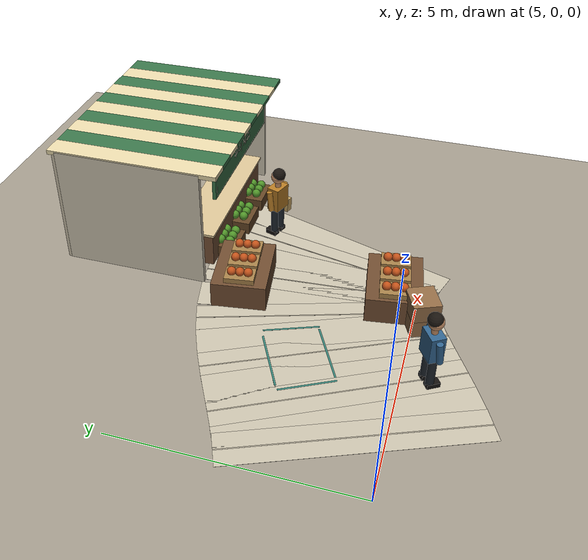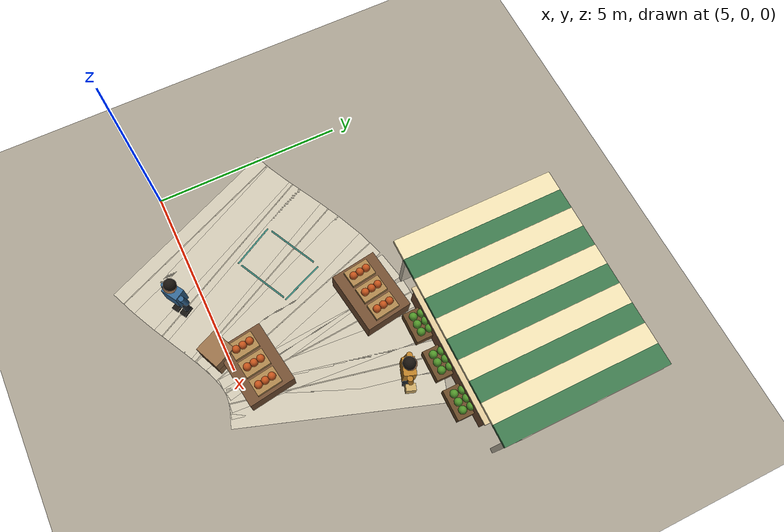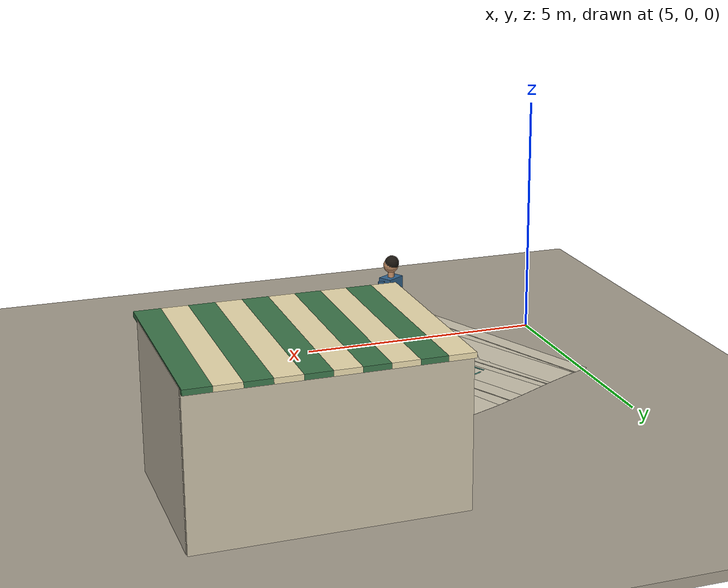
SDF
<sdf version="1.10">
 <world name="swan_market">
  <model name="ground">
   <static>true</static>
   <pose>15 0 -0.1 0 0 0</pose>
   <link name="body">
    <collision name="box_collision"><geometry><box><size>46 24 0.2</size></box></geometry></collision>
    <visual name="box_visual">
     <geometry><box><size>46 24 0.2</size></box></geometry>
     <material><ambient>0.64 0.61 0.55 1</ambient><diffuse>0.64 0.61 0.55 1</diffuse></material>
    </visual>
   </link>
  </model>
  <model name="market_paving_16">
   <static>true</static>
   <pose>6.25 0.54833 0.002 0 0 0.40225</pose>
   <link name="body">
    <visual name="box_visual">
     <geometry><box><size>0.75 5.2 0.004</size></box></geometry>
     <material><ambient>0.79 0.76 0.68 1</ambient><diffuse>0.79 0.76 0.68 1</diffuse></material>
    </visual>
   </link>
  </model>
  <model name="paving_joint_16">
   <static>true</static>
   <pose>6.25 0.54833 0.0045 0 0 0.40225</pose>
   <link name="body">
    <visual name="box_visual">
     <geometry><box><size>0.025 5.2 0.001</size></box></geometry>
     <material><ambient>0.67 0.64 0.57 1</ambient><diffuse>0.67 0.64 0.57 1</diffuse></material>
    </visual>
   </link>
  </model>
  <model name="market_paving_17">
   <static>true</static>
   <pose>6.75 0.77782 0.002 0 0 0.45458</pose>
   <link name="body">
    <visual name="box_visual">
     <geometry><box><size>0.75 5.2 0.004</size></box></geometry>
     <material><ambient>0.79 0.76 0.68 1</ambient><diffuse>0.79 0.76 0.68 1</diffuse></material>
    </visual>
   </link>
  </model>
  <model name="market_paving_18">
   <static>true</static>
   <pose>7.25 1.0326 0.002 0 0 0.48375</pose>
   <link name="body">
    <visual name="box_visual">
     <geometry><box><size>0.75 5.2 0.004</size></box></geometry>
     <material><ambient>0.79 0.76 0.68 1</ambient><diffuse>0.79 0.76 0.68 1</diffuse></material>
    </visual>
   </link>
  </model>
  <model name="paving_joint_18">
   <static>true</static>
   <pose>7.25 1.0326 0.0045 0 0 0.48375</pose>
   <link name="body">
    <visual name="box_visual">
     <geometry><box><size>0.025 5.2 0.001</size></box></geometry>
     <material><ambient>0.67 0.64 0.57 1</ambient><diffuse>0.67 0.64 0.57 1</diffuse></material>
    </visual>
   </link>
  </model>
  <model name="market_paving_19">
   <static>true</static>
   <pose>7.75 1.2978 0.002 0 0 0.48699</pose>
   <link name="body">
    <visual name="box_visual">
     <geometry><box><size>0.75 5.2 0.004</size></box></geometry>
     <material><ambient>0.79 0.76 0.68 1</ambient><diffuse>0.79 0.76 0.68 1</diffuse></material>
    </visual>
   </link>
  </model>
  <model name="market_paving_20">
   <static>true</static>
   <pose>8.25 1.5562 0.002 0 0 0.46221</pose>
   <link name="body">
    <visual name="box_visual">
     <geometry><box><size>0.75 5.2 0.004</size></box></geometry>
     <material><ambient>0.79 0.76 0.68 1</ambient><diffuse>0.79 0.76 0.68 1</diffuse></material>
    </visual>
   </link>
  </model>
  <model name="paving_joint_20">
   <static>true</static>
   <pose>8.25 1.5562 0.0045 0 0 0.46221</pose>
   <link name="body">
    <visual name="box_visual">
     <geometry><box><size>0.025 5.2 0.001</size></box></geometry>
     <material><ambient>0.67 0.64 0.57 1</ambient><diffuse>0.67 0.64 0.57 1</diffuse></material>
    </visual>
   </link>
  </model>
  <model name="market_paving_21">
   <static>true</static>
   <pose>8.75 1.7901 0.002 0 0 0.40758</pose>
   <link name="body">
    <visual name="box_visual">
     <geometry><box><size>0.75 5.2 0.004</size></box></geometry>
     <material><ambient>0.79 0.76 0.68 1</ambient><diffuse>0.79 0.76 0.68 1</diffuse></material>
    </visual>
   </link>
  </model>
  <model name="market_paving_22">
   <static>true</static>
   <pose>9.25 1.9827 0.002 0 0 0.32217</pose>
   <link name="body">
    <visual name="box_visual">
     <geometry><box><size>0.75 5.2 0.004</size></box></geometry>
     <material><ambient>0.79 0.76 0.68 1</ambient><diffuse>0.79 0.76 0.68 1</diffuse></material>
    </visual>
   </link>
  </model>
  <model name="paving_joint_22">
   <static>true</static>
   <pose>9.25 1.9827 0.0045 0 0 0.32217</pose>
   <link name="body">
    <visual name="box_visual">
     <geometry><box><size>0.025 5.2 0.001</size></box></geometry>
     <material><ambient>0.67 0.64 0.57 1</ambient><diffuse>0.67 0.64 0.57 1</diffuse></material>
    </visual>
   </link>
  </model>
  <model name="market_paving_23">
   <static>true</static>
   <pose>9.75 2.1197 0.002 0 0 0.2079</pose>
   <link name="body">
    <visual name="box_visual">
     <geometry><box><size>0.75 5.2 0.004</size></box></geometry>
     <material><ambient>0.79 0.76 0.68 1</ambient><diffuse>0.79 0.76 0.68 1</diffuse></material>
    </visual>
   </link>
  </model>
  <model name="market_paving_24">
   <static>true</static>
   <pose>10.25 2.191 0.002 0 0 0.072021</pose>
   <link name="body">
    <visual name="box_visual">
     <geometry><box><size>0.75 5.2 0.004</size></box></geometry>
     <material><ambient>0.79 0.76 0.68 1</ambient><diffuse>0.79 0.76 0.68 1</diffuse></material>
    </visual>
   </link>
  </model>
  <model name="paving_joint_24">
   <static>true</static>
   <pose>10.25 2.191 0.0045 0 0 0.072021</pose>
   <link name="body">
    <visual name="box_visual">
     <geometry><box><size>0.025 5.2 0.001</size></box></geometry>
     <material><ambient>0.67 0.64 0.57 1</ambient><diffuse>0.67 0.64 0.57 1</diffuse></material>
    </visual>
   </link>
  </model>
  <model name="market_paving_25">
   <static>true</static>
   <pose>10.75 2.191 0.002 0 0 -0.072021</pose>
   <link name="body">
    <visual name="box_visual">
     <geometry><box><size>0.75 5.2 0.004</size></box></geometry>
     <material><ambient>0.79 0.76 0.68 1</ambient><diffuse>0.79 0.76 0.68 1</diffuse></material>
    </visual>
   </link>
  </model>
  <model name="market_paving_26">
   <static>true</static>
   <pose>11.25 2.1197 0.002 0 0 -0.2079</pose>
   <link name="body">
    <visual name="box_visual">
     <geometry><box><size>0.75 5.2 0.004</size></box></geometry>
     <material><ambient>0.79 0.76 0.68 1</ambient><diffuse>0.79 0.76 0.68 1</diffuse></material>
    </visual>
   </link>
  </model>
  <model name="paving_joint_26">
   <static>true</static>
   <pose>11.25 2.1197 0.0045 0 0 -0.2079</pose>
   <link name="body">
    <visual name="box_visual">
     <geometry><box><size>0.025 5.2 0.001</size></box></geometry>
     <material><ambient>0.67 0.64 0.57 1</ambient><diffuse>0.67 0.64 0.57 1</diffuse></material>
    </visual>
   </link>
  </model>
  <model name="market_paving_27">
   <static>true</static>
   <pose>11.75 1.9827 0.002 0 0 -0.32217</pose>
   <link name="body">
    <visual name="box_visual">
     <geometry><box><size>0.75 5.2 0.004</size></box></geometry>
     <material><ambient>0.79 0.76 0.68 1</ambient><diffuse>0.79 0.76 0.68 1</diffuse></material>
    </visual>
   </link>
  </model>
  <model name="stall_01">
   <static>true</static>
   <pose>12 6.3425 0 0 0 0</pose>
   <link name="body">
    <collision name="rear_collision">
     <pose>0 1.65 1.4 0 0 0</pose>
     <geometry><box><size>4.8 0.15 2.8</size></box></geometry>
    </collision>
    <visual name="rear_visual">
     <pose>0 1.65 1.4 0 0 0</pose>
     <geometry><box><size>4.8 0.15 2.8</size></box></geometry>
     <material><ambient>0.78 0.74 0.65 1</ambient><diffuse>0.78 0.74 0.65 1</diffuse></material>
    </visual>
    <collision name="side_-2.35_collision">
     <pose>-2.35 0 1.4 0 0 0</pose>
     <geometry><box><size>0.12 3.3 2.8</size></box></geometry>
    </collision>
    <visual name="side_-2.35_visual">
     <pose>-2.35 0 1.4 0 0 0</pose>
     <geometry><box><size>0.12 3.3 2.8</size></box></geometry>
     <material><ambient>0.81 0.77 0.69 1</ambient><diffuse>0.81 0.77 0.69 1</diffuse></material>
    </visual>
    <collision name="side_2.35_collision">
     <pose>2.35 0 1.4 0 0 0</pose>
     <geometry><box><size>0.12 3.3 2.8</size></box></geometry>
    </collision>
    <visual name="side_2.35_visual">
     <pose>2.35 0 1.4 0 0 0</pose>
     <geometry><box><size>0.12 3.3 2.8</size></box></geometry>
     <material><ambient>0.81 0.77 0.69 1</ambient><diffuse>0.81 0.77 0.69 1</diffuse></material>
    </visual>
    <collision name="counter_collision">
     <pose>0 -1.22 0.4 0 0 0</pose>
     <geometry><box><size>3.5 0.85 0.8</size></box></geometry>
    </collision>
    <visual name="counter_visual">
     <pose>0 -1.22 0.4 0 0 0</pose>
     <geometry><box><size>3.5 0.85 0.8</size></box></geometry>
     <material><ambient>0.47 0.32 0.21 1</ambient><diffuse>0.47 0.32 0.21 1</diffuse></material>
    </visual>
    <collision name="counter_top_collision">
     <pose>0 -1.22 0.83 0 0 0</pose>
     <geometry><box><size>3.6 0.95 0.06</size></box></geometry>
    </collision>
    <visual name="counter_top_visual">
     <pose>0 -1.22 0.83 0 0 0</pose>
     <geometry><box><size>3.6 0.95 0.06</size></box></geometry>
     <material><ambient>0.86 0.77 0.59 1</ambient><diffuse>0.86 0.77 0.59 1</diffuse></material>
    </visual>
    <collision name="awning_0_collision">
     <pose>-2.16 -0.1 2.78 0 0 0</pose>
     <geometry><box><size>0.48 3.85 0.1</size></box></geometry>
    </collision>
    <visual name="awning_0_visual">
     <pose>-2.16 -0.1 2.78 0 0 0</pose>
     <geometry><box><size>0.48 3.85 0.1</size></box></geometry>
     <material><ambient>0.92 0.86 0.68 1</ambient><diffuse>0.92 0.86 0.68 1</diffuse></material>
    </visual>
    <collision name="awning_1_collision">
     <pose>-1.68 -0.1 2.78 0 0 0</pose>
     <geometry><box><size>0.48 3.85 0.1</size></box></geometry>
    </collision>
    <visual name="awning_1_visual">
     <pose>-1.68 -0.1 2.78 0 0 0</pose>
     <geometry><box><size>0.48 3.85 0.1</size></box></geometry>
     <material><ambient>0.23 0.46 0.29 1</ambient><diffuse>0.23 0.46 0.29 1</diffuse></material>
    </visual>
    <collision name="awning_2_collision">
     <pose>-1.2 -0.1 2.78 0 0 0</pose>
     <geometry><box><size>0.48 3.85 0.1</size></box></geometry>
    </collision>
    <visual name="awning_2_visual">
     <pose>-1.2 -0.1 2.78 0 0 0</pose>
     <geometry><box><size>0.48 3.85 0.1</size></box></geometry>
     <material><ambient>0.92 0.86 0.68 1</ambient><diffuse>0.92 0.86 0.68 1</diffuse></material>
    </visual>
    <collision name="awning_3_collision">
     <pose>-0.72 -0.1 2.78 0 0 0</pose>
     <geometry><box><size>0.48 3.85 0.1</size></box></geometry>
    </collision>
    <visual name="awning_3_visual">
     <pose>-0.72 -0.1 2.78 0 0 0</pose>
     <geometry><box><size>0.48 3.85 0.1</size></box></geometry>
     <material><ambient>0.23 0.46 0.29 1</ambient><diffuse>0.23 0.46 0.29 1</diffuse></material>
    </visual>
    <collision name="awning_4_collision">
     <pose>-0.24 -0.1 2.78 0 0 0</pose>
     <geometry><box><size>0.48 3.85 0.1</size></box></geometry>
    </collision>
    <visual name="awning_4_visual">
     <pose>-0.24 -0.1 2.78 0 0 0</pose>
     <geometry><box><size>0.48 3.85 0.1</size></box></geometry>
     <material><ambient>0.92 0.86 0.68 1</ambient><diffuse>0.92 0.86 0.68 1</diffuse></material>
    </visual>
    <collision name="awning_5_collision">
     <pose>0.24 -0.1 2.78 0 0 0</pose>
     <geometry><box><size>0.48 3.85 0.1</size></box></geometry>
    </collision>
    <visual name="awning_5_visual">
     <pose>0.24 -0.1 2.78 0 0 0</pose>
     <geometry><box><size>0.48 3.85 0.1</size></box></geometry>
     <material><ambient>0.23 0.46 0.29 1</ambient><diffuse>0.23 0.46 0.29 1</diffuse></material>
    </visual>
    <collision name="awning_6_collision">
     <pose>0.72 -0.1 2.78 0 0 0</pose>
     <geometry><box><size>0.48 3.85 0.1</size></box></geometry>
    </collision>
    <visual name="awning_6_visual">
     <pose>0.72 -0.1 2.78 0 0 0</pose>
     <geometry><box><size>0.48 3.85 0.1</size></box></geometry>
     <material><ambient>0.92 0.86 0.68 1</ambient><diffuse>0.92 0.86 0.68 1</diffuse></material>
    </visual>
    <collision name="awning_7_collision">
     <pose>1.2 -0.1 2.78 0 0 0</pose>
     <geometry><box><size>0.48 3.85 0.1</size></box></geometry>
    </collision>
    <visual name="awning_7_visual">
     <pose>1.2 -0.1 2.78 0 0 0</pose>
     <geometry><box><size>0.48 3.85 0.1</size></box></geometry>
     <material><ambient>0.23 0.46 0.29 1</ambient><diffuse>0.23 0.46 0.29 1</diffuse></material>
    </visual>
    <collision name="awning_8_collision">
     <pose>1.68 -0.1 2.78 0 0 0</pose>
     <geometry><box><size>0.48 3.85 0.1</size></box></geometry>
    </collision>
    <visual name="awning_8_visual">
     <pose>1.68 -0.1 2.78 0 0 0</pose>
     <geometry><box><size>0.48 3.85 0.1</size></box></geometry>
     <material><ambient>0.92 0.86 0.68 1</ambient><diffuse>0.92 0.86 0.68 1</diffuse></material>
    </visual>
    <collision name="awning_9_collision">
     <pose>2.16 -0.1 2.78 0 0 0</pose>
     <geometry><box><size>0.48 3.85 0.1</size></box></geometry>
    </collision>
    <visual name="awning_9_visual">
     <pose>2.16 -0.1 2.78 0 0 0</pose>
     <geometry><box><size>0.48 3.85 0.1</size></box></geometry>
     <material><ambient>0.23 0.46 0.29 1</ambient><diffuse>0.23 0.46 0.29 1</diffuse></material>
    </visual>
    <collision name="crate_-1_collision">
     <pose>-1.04 -1.77 0.15 0 0 0</pose>
     <geometry><box><size>0.78 0.6 0.3</size></box></geometry>
    </collision>
    <visual name="crate_-1_visual">
     <pose>-1.04 -1.77 0.15 0 0 0</pose>
     <geometry><box><size>0.78 0.6 0.3</size></box></geometry>
     <material><ambient>0.4 0.28 0.15 1</ambient><diffuse>0.4 0.28 0.15 1</diffuse></material>
    </visual>
    <visual name="produce_-1_0_visual">
     <pose>-1.25 -1.88 0.39 0 0 0</pose>
     <geometry><sphere><radius>0.105</radius></sphere></geometry>
     <material><ambient>0.31 0.58 0.16 1</ambient><diffuse>0.31 0.58 0.16 1</diffuse></material>
    </visual>
    <visual name="produce_-1_1_visual">
     <pose>-1.04 -1.88 0.39 0 0 0</pose>
     <geometry><sphere><radius>0.105</radius></sphere></geometry>
     <material><ambient>0.31 0.58 0.16 1</ambient><diffuse>0.31 0.58 0.16 1</diffuse></material>
    </visual>
    <visual name="produce_-1_2_visual">
     <pose>-0.83 -1.88 0.39 0 0 0</pose>
     <geometry><sphere><radius>0.105</radius></sphere></geometry>
     <material><ambient>0.31 0.58 0.16 1</ambient><diffuse>0.31 0.58 0.16 1</diffuse></material>
    </visual>
    <visual name="produce_-1_3_visual">
     <pose>-1.25 -1.66 0.39 0 0 0</pose>
     <geometry><sphere><radius>0.105</radius></sphere></geometry>
     <material><ambient>0.31 0.58 0.16 1</ambient><diffuse>0.31 0.58 0.16 1</diffuse></material>
    </visual>
    <visual name="produce_-1_4_visual">
     <pose>-1.04 -1.66 0.39 0 0 0</pose>
     <geometry><sphere><radius>0.105</radius></sphere></geometry>
     <material><ambient>0.31 0.58 0.16 1</ambient><diffuse>0.31 0.58 0.16 1</diffuse></material>
    </visual>
    <visual name="produce_-1_5_visual">
     <pose>-0.83 -1.66 0.39 0 0 0</pose>
     <geometry><sphere><radius>0.105</radius></sphere></geometry>
     <material><ambient>0.31 0.58 0.16 1</ambient><diffuse>0.31 0.58 0.16 1</diffuse></material>
    </visual>
    <collision name="crate_0_collision">
     <pose>0 -1.77 0.15 0 0 0</pose>
     <geometry><box><size>0.78 0.6 0.3</size></box></geometry>
    </collision>
    <visual name="crate_0_visual">
     <pose>0 -1.77 0.15 0 0 0</pose>
     <geometry><box><size>0.78 0.6 0.3</size></box></geometry>
     <material><ambient>0.4 0.28 0.15 1</ambient><diffuse>0.4 0.28 0.15 1</diffuse></material>
    </visual>
    <visual name="produce_0_0_visual">
     <pose>-0.21 -1.88 0.39 0 0 0</pose>
     <geometry><sphere><radius>0.105</radius></sphere></geometry>
     <material><ambient>0.31 0.58 0.16 1</ambient><diffuse>0.31 0.58 0.16 1</diffuse></material>
    </visual>
    <visual name="produce_0_1_visual">
     <pose>0 -1.88 0.39 0 0 0</pose>
     <geometry><sphere><radius>0.105</radius></sphere></geometry>
     <material><ambient>0.31 0.58 0.16 1</ambient><diffuse>0.31 0.58 0.16 1</diffuse></material>
    </visual>
    <visual name="produce_0_2_visual">
     <pose>0.21 -1.88 0.39 0 0 0</pose>
     <geometry><sphere><radius>0.105</radius></sphere></geometry>
     <material><ambient>0.31 0.58 0.16 1</ambient><diffuse>0.31 0.58 0.16 1</diffuse></material>
    </visual>
    <visual name="produce_0_3_visual">
     <pose>-0.21 -1.66 0.39 0 0 0</pose>
     <geometry><sphere><radius>0.105</radius></sphere></geometry>
     <material><ambient>0.31 0.58 0.16 1</ambient><diffuse>0.31 0.58 0.16 1</diffuse></material>
    </visual>
    <visual name="produce_0_4_visual">
     <pose>0 -1.66 0.39 0 0 0</pose>
     <geometry><sphere><radius>0.105</radius></sphere></geometry>
     <material><ambient>0.31 0.58 0.16 1</ambient><diffuse>0.31 0.58 0.16 1</diffuse></material>
    </visual>
    <visual name="produce_0_5_visual">
     <pose>0.21 -1.66 0.39 0 0 0</pose>
     <geometry><sphere><radius>0.105</radius></sphere></geometry>
     <material><ambient>0.31 0.58 0.16 1</ambient><diffuse>0.31 0.58 0.16 1</diffuse></material>
    </visual>
    <collision name="crate_1_collision">
     <pose>1.04 -1.77 0.15 0 0 0</pose>
     <geometry><box><size>0.78 0.6 0.3</size></box></geometry>
    </collision>
    <visual name="crate_1_visual">
     <pose>1.04 -1.77 0.15 0 0 0</pose>
     <geometry><box><size>0.78 0.6 0.3</size></box></geometry>
     <material><ambient>0.4 0.28 0.15 1</ambient><diffuse>0.4 0.28 0.15 1</diffuse></material>
    </visual>
    <visual name="produce_1_0_visual">
     <pose>0.83 -1.88 0.39 0 0 0</pose>
     <geometry><sphere><radius>0.105</radius></sphere></geometry>
     <material><ambient>0.31 0.58 0.16 1</ambient><diffuse>0.31 0.58 0.16 1</diffuse></material>
    </visual>
    <visual name="produce_1_1_visual">
     <pose>1.04 -1.88 0.39 0 0 0</pose>
     <geometry><sphere><radius>0.105</radius></sphere></geometry>
     <material><ambient>0.31 0.58 0.16 1</ambient><diffuse>0.31 0.58 0.16 1</diffuse></material>
    </visual>
    <visual name="produce_1_2_visual">
     <pose>1.25 -1.88 0.39 0 0 0</pose>
     <geometry><sphere><radius>0.105</radius></sphere></geometry>
     <material><ambient>0.31 0.58 0.16 1</ambient><diffuse>0.31 0.58 0.16 1</diffuse></material>
    </visual>
    <visual name="produce_1_3_visual">
     <pose>0.83 -1.66 0.39 0 0 0</pose>
     <geometry><sphere><radius>0.105</radius></sphere></geometry>
     <material><ambient>0.31 0.58 0.16 1</ambient><diffuse>0.31 0.58 0.16 1</diffuse></material>
    </visual>
    <visual name="produce_1_4_visual">
     <pose>1.04 -1.66 0.39 0 0 0</pose>
     <geometry><sphere><radius>0.105</radius></sphere></geometry>
     <material><ambient>0.31 0.58 0.16 1</ambient><diffuse>0.31 0.58 0.16 1</diffuse></material>
    </visual>
    <visual name="produce_1_5_visual">
     <pose>1.25 -1.66 0.39 0 0 0</pose>
     <geometry><sphere><radius>0.105</radius></sphere></geometry>
     <material><ambient>0.31 0.58 0.16 1</ambient><diffuse>0.31 0.58 0.16 1</diffuse></material>
    </visual>
   </link>
  </model>
  <model name="signboard_1">
   <static>true</static>
   <pose>12 4.5825 2.24 0 0 0</pose>
   <link name="body">
    <collision name="box_collision"><geometry><box><size>3.65 0.08 0.72</size></box></geometry></collision>
    <visual name="box_visual">
     <geometry><box><size>3.65 0.08 0.72</size></box></geometry>
     <material><ambient>0.23 0.46 0.29 1</ambient><diffuse>0.23 0.46 0.29 1</diffuse></material>
    </visual>
   </link>
  </model>
  <model name="sign_shop_1">
   <static>true</static>
   <pose>12 4.5345 2.24 0 0 0</pose>
   <link name="body">
    <visual name="top_visual">
     <pose>0 -0.003 0.32062 0 0 0</pose>
     <geometry><box><size>3.5136 0.003 0.0108</size></box></geometry>
     <material><ambient>1 0.961 0.875 1</ambient><diffuse>1 0.961 0.875 1</diffuse></material>
    </visual>
    <visual name="bottom_visual">
     <pose>0 -0.003 -0.32062 0 0 0</pose>
     <geometry><box><size>3.5136 0.003 0.0108</size></box></geometry>
     <material><ambient>1 0.961 0.875 1</ambient><diffuse>1 0.961 0.875 1</diffuse></material>
    </visual>
    <visual name="left_visual">
     <pose>-1.7568 -0.003 0 0 0 0</pose>
     <geometry><box><size>0.0108 0.003 0.64125</size></box></geometry>
     <material><ambient>1 0.961 0.875 1</ambient><diffuse>1 0.961 0.875 1</diffuse></material>
    </visual>
    <visual name="right_visual">
     <pose>1.7568 -0.003 0 0 0 0</pose>
     <geometry><box><size>0.0108 0.003 0.64125</size></box></geometry>
     <material><ambient>1 0.961 0.875 1</ambient><diffuse>1 0.961 0.875 1</diffuse></material>
    </visual>
    <visual name="ink_0_visual">
     <pose>-0.44062 -0.003 0.15938 0 0 0</pose>
     <geometry><box><size>0.01875 0.003 0.01875</size></box></geometry>
     <material><ambient>1 0.961 0.875 1</ambient><diffuse>1 0.961 0.875 1</diffuse></material>
    </visual>
    <visual name="ink_1_visual">
     <pose>-0.44062 -0.003 0.14062 0 0 0</pose>
     <geometry><box><size>0.13125 0.003 0.01875</size></box></geometry>
     <material><ambient>1 0.961 0.875 1</ambient><diffuse>1 0.961 0.875 1</diffuse></material>
    </visual>
    <visual name="ink_2_visual">
     <pose>0.1125 -0.003 0.14062 0 0 0</pose>
     <geometry><box><size>0.075 0.003 0.01875</size></box></geometry>
     <material><ambient>1 0.961 0.875 1</ambient><diffuse>1 0.961 0.875 1</diffuse></material>
    </visual>
    <visual name="ink_3_visual">
     <pose>-0.50625 -0.003 0.12188 0 0 0</pose>
     <geometry><box><size>0.0375 0.003 0.01875</size></box></geometry>
     <material><ambient>1 0.961 0.875 1</ambient><diffuse>1 0.961 0.875 1</diffuse></material>
    </visual>
    <visual name="ink_4_visual">
     <pose>-0.375 -0.003 0.12188 0 0 0</pose>
     <geometry><box><size>0.0375 0.003 0.01875</size></box></geometry>
     <material><ambient>1 0.961 0.875 1</ambient><diffuse>1 0.961 0.875 1</diffuse></material>
    </visual>
    <visual name="ink_5_visual">
     <pose>-0.21562 -0.003 0.13125 0 0 0</pose>
     <geometry><box><size>0.13125 0.003 0.0375</size></box></geometry>
     <material><ambient>1 0.961 0.875 1</ambient><diffuse>1 0.961 0.875 1</diffuse></material>
    </visual>
    <visual name="ink_6_visual">
     <pose>0.12187 -0.003 0.12188 0 0 0</pose>
     <geometry><box><size>0.05625 0.003 0.01875</size></box></geometry>
     <material><ambient>1 0.961 0.875 1</ambient><diffuse>1 0.961 0.875 1</diffuse></material>
    </visual>
    <visual name="ink_7_visual">
     <pose>0.44063 -0.003 0.13125 0 0 0</pose>
     <geometry><box><size>0.01875 0.003 0.0375</size></box></geometry>
     <material><ambient>1 0.961 0.875 1</ambient><diffuse>1 0.961 0.875 1</diffuse></material>
    </visual>
    <visual name="ink_8_visual">
     <pose>-0.525 -0.003 0.09375 0 0 0</pose>
     <geometry><box><size>0.0375 0.003 0.0375</size></box></geometry>
     <material><ambient>1 0.961 0.875 1</ambient><diffuse>1 0.961 0.875 1</diffuse></material>
    </visual>
    <visual name="ink_9_visual">
     <pose>-0.35625 -0.003 0.09375 0 0 0</pose>
     <geometry><box><size>0.0375 0.003 0.0375</size></box></geometry>
     <material><ambient>1 0.961 0.875 1</ambient><diffuse>1 0.961 0.875 1</diffuse></material>
    </visual>
    <visual name="ink_10_visual">
     <pose>-0.16875 -0.003 0.09375 0 0 0</pose>
     <geometry><box><size>0.0375 0.003 0.0375</size></box></geometry>
     <material><ambient>1 0.961 0.875 1</ambient><diffuse>1 0.961 0.875 1</diffuse></material>
    </visual>
    <visual name="ink_11_visual">
     <pose>0.12187 -0.003 0.084375 0 0 0</pose>
     <geometry><box><size>0.13125 0.003 0.01875</size></box></geometry>
     <material><ambient>1 0.961 0.875 1</ambient><diffuse>1 0.961 0.875 1</diffuse></material>
    </visual>
    <visual name="ink_12_visual">
     <pose>0.44063 -0.003 0.09375 0 0 0</pose>
     <geometry><box><size>0.05625 0.003 0.0375</size></box></geometry>
     <material><ambient>1 0.961 0.875 1</ambient><diffuse>1 0.961 0.875 1</diffuse></material>
    </visual>
    <visual name="ink_13_visual">
     <pose>-0.50625 -0.003 0.065625 0 0 0</pose>
     <geometry><box><size>0.0375 0.003 0.01875</size></box></geometry>
     <material><ambient>1 0.961 0.875 1</ambient><diffuse>1 0.961 0.875 1</diffuse></material>
    </visual>
    <visual name="ink_14_visual">
     <pose>-0.375 -0.003 0.065625 0 0 0</pose>
     <geometry><box><size>0.0375 0.003 0.01875</size></box></geometry>
     <material><ambient>1 0.961 0.875 1</ambient><diffuse>1 0.961 0.875 1</diffuse></material>
    </visual>
    <visual name="ink_15_visual">
     <pose>-0.21562 -0.003 0.065625 0 0 0</pose>
     <geometry><box><size>0.13125 0.003 0.01875</size></box></geometry>
     <material><ambient>1 0.961 0.875 1</ambient><diffuse>1 0.961 0.875 1</diffuse></material>
    </visual>
    <visual name="ink_16_visual">
     <pose>0.12187 -0.003 0.065625 0 0 0</pose>
     <geometry><box><size>0.01875 0.003 0.01875</size></box></geometry>
     <material><ambient>1 0.961 0.875 1</ambient><diffuse>1 0.961 0.875 1</diffuse></material>
    </visual>
    <visual name="ink_17_visual">
     <pose>0.21563 -0.003 0.1125 0 0 0</pose>
     <geometry><box><size>0.01875 0.003 0.1125</size></box></geometry>
     <material><ambient>1 0.961 0.875 1</ambient><diffuse>1 0.961 0.875 1</diffuse></material>
    </visual>
    <visual name="ink_18_visual">
     <pose>0.2625 -0.003 0.1125 0 0 0</pose>
     <geometry><box><size>0.0375 0.003 0.1125</size></box></geometry>
     <material><ambient>1 0.961 0.875 1</ambient><diffuse>1 0.961 0.875 1</diffuse></material>
    </visual>
    <visual name="ink_19_visual">
     <pose>0.4125 -0.003 0.065625 0 0 0</pose>
     <geometry><box><size>0.0375 0.003 0.01875</size></box></geometry>
     <material><ambient>1 0.961 0.875 1</ambient><diffuse>1 0.961 0.875 1</diffuse></material>
    </visual>
    <visual name="ink_20_visual">
     <pose>0.46875 -0.003 0.065625 0 0 0</pose>
     <geometry><box><size>0.0375 0.003 0.01875</size></box></geometry>
     <material><ambient>1 0.961 0.875 1</ambient><diffuse>1 0.961 0.875 1</diffuse></material>
    </visual>
    <visual name="ink_21_visual">
     <pose>-0.44062 -0.003 0.046875 0 0 0</pose>
     <geometry><box><size>0.13125 0.003 0.01875</size></box></geometry>
     <material><ambient>1 0.961 0.875 1</ambient><diffuse>1 0.961 0.875 1</diffuse></material>
    </visual>
    <visual name="ink_22_visual">
     <pose>-0.225 -0.003 0.046875 0 0 0</pose>
     <geometry><box><size>0.1125 0.003 0.01875</size></box></geometry>
     <material><ambient>1 0.961 0.875 1</ambient><diffuse>1 0.961 0.875 1</diffuse></material>
    </visual>
    <visual name="ink_23_visual">
     <pose>0.1125 -0.003 0.046875 0 0 0</pose>
     <geometry><box><size>0.0375 0.003 0.01875</size></box></geometry>
     <material><ambient>1 0.961 0.875 1</ambient><diffuse>1 0.961 0.875 1</diffuse></material>
    </visual>
    <visual name="ink_24_visual">
     <pose>0.24375 -0.003 0.046875 0 0 0</pose>
     <geometry><box><size>0.075 0.003 0.01875</size></box></geometry>
     <material><ambient>1 0.961 0.875 1</ambient><diffuse>1 0.961 0.875 1</diffuse></material>
    </visual>
    <visual name="ink_25_visual">
     <pose>0.38438 -0.003 0.046875 0 0 0</pose>
     <geometry><box><size>0.05625 0.003 0.01875</size></box></geometry>
     <material><ambient>1 0.961 0.875 1</ambient><diffuse>1 0.961 0.875 1</diffuse></material>
    </visual>
    <visual name="ink_26_visual">
     <pose>0.49688 -0.003 0.046875 0 0 0</pose>
     <geometry><box><size>0.05625 0.003 0.01875</size></box></geometry>
     <material><ambient>1 0.961 0.875 1</ambient><diffuse>1 0.961 0.875 1</diffuse></material>
    </visual>
    <visual name="ink_27_visual">
     <pose>0.35625 -0.003 0.028125 0 0 0</pose>
     <geometry><box><size>0.0375 0.003 0.01875</size></box></geometry>
     <material><ambient>1 0.961 0.875 1</ambient><diffuse>1 0.961 0.875 1</diffuse></material>
    </visual>
    <visual name="ink_28_visual">
     <pose>0.525 -0.003 0.028125 0 0 0</pose>
     <geometry><box><size>0.0375 0.003 0.01875</size></box></geometry>
     <material><ambient>1 0.961 0.875 1</ambient><diffuse>1 0.961 0.875 1</diffuse></material>
    </visual>
    <visual name="ink_29_visual">
     <pose>0.12187 -0.003 0.01875 0 0 0</pose>
     <geometry><box><size>0.05625 0.003 0.0375</size></box></geometry>
     <material><ambient>1 0.961 0.875 1</ambient><diffuse>1 0.961 0.875 1</diffuse></material>
    </visual>
    <visual name="ink_30_visual">
     <pose>-0.44062 -0.003 0 0 0 0</pose>
     <geometry><box><size>0.24375 0.003 0.0375</size></box></geometry>
     <material><ambient>1 0.961 0.875 1</ambient><diffuse>1 0.961 0.875 1</diffuse></material>
    </visual>
    <visual name="ink_31_visual">
     <pose>-0.27187 -0.003 0.009375 0 0 0</pose>
     <geometry><box><size>0.01875 0.003 0.05625</size></box></geometry>
     <material><ambient>1 0.961 0.875 1</ambient><diffuse>1 0.961 0.875 1</diffuse></material>
    </visual>
    <visual name="ink_32_visual">
     <pose>-0.14062 -0.003 -0.009375 0 0 0</pose>
     <geometry><box><size>0.01875 0.003 0.01875</size></box></geometry>
     <material><ambient>1 0.961 0.875 1</ambient><diffuse>1 0.961 0.875 1</diffuse></material>
    </visual>
    <visual name="ink_33_visual">
     <pose>0.09375 -0.003 -0.009375 0 0 0</pose>
     <geometry><box><size>0.0375 0.003 0.01875</size></box></geometry>
     <material><ambient>1 0.961 0.875 1</ambient><diffuse>1 0.961 0.875 1</diffuse></material>
    </visual>
    <visual name="ink_34_visual">
     <pose>0.15 -0.003 -0.009375 0 0 0</pose>
     <geometry><box><size>0.0375 0.003 0.01875</size></box></geometry>
     <material><ambient>1 0.961 0.875 1</ambient><diffuse>1 0.961 0.875 1</diffuse></material>
    </visual>
    <visual name="ink_35_visual">
     <pose>-0.20625 -0.003 -0.028125 0 0 0</pose>
     <geometry><box><size>0.15 0.003 0.01875</size></box></geometry>
     <material><ambient>1 0.961 0.875 1</ambient><diffuse>1 0.961 0.875 1</diffuse></material>
    </visual>
    <visual name="ink_36_visual">
     <pose>0.075 -0.003 -0.028125 0 0 0</pose>
     <geometry><box><size>0.0375 0.003 0.01875</size></box></geometry>
     <material><ambient>1 0.961 0.875 1</ambient><diffuse>1 0.961 0.875 1</diffuse></material>
    </visual>
    <visual name="ink_37_visual">
     <pose>0.16875 -0.003 -0.028125 0 0 0</pose>
     <geometry><box><size>0.0375 0.003 0.01875</size></box></geometry>
     <material><ambient>1 0.961 0.875 1</ambient><diffuse>1 0.961 0.875 1</diffuse></material>
    </visual>
    <visual name="ink_38_visual">
     <pose>0.44063 -0.003 -0.009375 0 0 0</pose>
     <geometry><box><size>0.01875 0.003 0.05625</size></box></geometry>
     <material><ambient>1 0.961 0.875 1</ambient><diffuse>1 0.961 0.875 1</diffuse></material>
    </visual>
    <visual name="ink_39_visual">
     <pose>0.065625 -0.003 -0.046875 0 0 0</pose>
     <geometry><box><size>0.01875 0.003 0.01875</size></box></geometry>
     <material><ambient>1 0.961 0.875 1</ambient><diffuse>1 0.961 0.875 1</diffuse></material>
    </visual>
    <visual name="ink_40_visual">
     <pose>0.44063 -0.003 -0.05625 0 0 0</pose>
     <geometry><box><size>0.24375 0.003 0.0375</size></box></geometry>
     <material><ambient>1 0.961 0.875 1</ambient><diffuse>1 0.961 0.875 1</diffuse></material>
    </visual>
    <visual name="ink_41_visual">
     <pose>0.21563 -0.003 -0.028125 0 0 0</pose>
     <geometry><box><size>0.01875 0.003 0.13125</size></box></geometry>
     <material><ambient>1 0.961 0.875 1</ambient><diffuse>1 0.961 0.875 1</diffuse></material>
    </visual>
    <visual name="ink_42_visual">
     <pose>0.2625 -0.003 -0.028125 0 0 0</pose>
     <geometry><box><size>0.0375 0.003 0.13125</size></box></geometry>
     <material><ambient>1 0.961 0.875 1</ambient><diffuse>1 0.961 0.875 1</diffuse></material>
    </visual>
    <visual name="ink_43_visual">
     <pose>-0.44062 -0.003 -0.065625 0 0 0</pose>
     <geometry><box><size>0.01875 0.003 0.09375</size></box></geometry>
     <material><ambient>1 0.961 0.875 1</ambient><diffuse>1 0.961 0.875 1</diffuse></material>
    </visual>
    <visual name="ink_44_visual">
     <pose>-0.084375 -0.003 0.028125 0 0 0</pose>
     <geometry><box><size>0.01875 0.003 0.28125</size></box></geometry>
     <material><ambient>1 0.961 0.875 1</ambient><diffuse>1 0.961 0.875 1</diffuse></material>
    </visual>
    <visual name="ink_45_visual">
     <pose>0.27188 -0.003 -0.10313 0 0 0</pose>
     <geometry><box><size>0.01875 0.003 0.01875</size></box></geometry>
     <material><ambient>1 0.961 0.875 1</ambient><diffuse>1 0.961 0.875 1</diffuse></material>
    </visual>
   </link>
  </model>
  <model name="aisle_display_-1">
   <static>true</static>
   <pose>10.233 0.53064 0.3 0 0 0.14195</pose>
   <link name="body">
    <collision name="box_collision"><geometry><box><size>1.6 1.2 0.6</size></box></geometry></collision>
    <visual name="box_visual">
     <geometry><box><size>1.6 1.2 0.6</size></box></geometry>
     <material><ambient>0.44 0.3 0.19 1</ambient><diffuse>0.44 0.3 0.19 1</diffuse></material>
    </visual>
    <collision name="basket_-0.5_collision">
     <pose>-0.5 0 0.36 0 0 0</pose>
     <geometry><box><size>0.42 0.65 0.12</size></box></geometry>
    </collision>
    <visual name="basket_-0.5_visual">
     <pose>-0.5 0 0.36 0 0 0</pose>
     <geometry><box><size>0.42 0.65 0.12</size></box></geometry>
     <material><ambient>0.66 0.51 0.29 1</ambient><diffuse>0.66 0.51 0.29 1</diffuse></material>
    </visual>
    <visual name="goods_-0.5_-1_visual">
     <pose>-0.5 -0.18 0.47 0 0 0</pose>
     <geometry><sphere><radius>0.1</radius></sphere></geometry>
     <material><ambient>0.76 0.32 0.1 1</ambient><diffuse>0.76 0.32 0.1 1</diffuse></material>
    </visual>
    <visual name="goods_-0.5_0_visual">
     <pose>-0.5 0 0.47 0 0 0</pose>
     <geometry><sphere><radius>0.1</radius></sphere></geometry>
     <material><ambient>0.76 0.32 0.1 1</ambient><diffuse>0.76 0.32 0.1 1</diffuse></material>
    </visual>
    <visual name="goods_-0.5_1_visual">
     <pose>-0.5 0.18 0.47 0 0 0</pose>
     <geometry><sphere><radius>0.1</radius></sphere></geometry>
     <material><ambient>0.76 0.32 0.1 1</ambient><diffuse>0.76 0.32 0.1 1</diffuse></material>
    </visual>
    <collision name="basket_0_collision">
     <pose>0 0 0.36 0 0 0</pose>
     <geometry><box><size>0.42 0.65 0.12</size></box></geometry>
    </collision>
    <visual name="basket_0_visual">
     <pose>0 0 0.36 0 0 0</pose>
     <geometry><box><size>0.42 0.65 0.12</size></box></geometry>
     <material><ambient>0.66 0.51 0.29 1</ambient><diffuse>0.66 0.51 0.29 1</diffuse></material>
    </visual>
    <visual name="goods_0_-1_visual">
     <pose>0 -0.18 0.47 0 0 0</pose>
     <geometry><sphere><radius>0.1</radius></sphere></geometry>
     <material><ambient>0.76 0.32 0.1 1</ambient><diffuse>0.76 0.32 0.1 1</diffuse></material>
    </visual>
    <visual name="goods_0_0_visual">
     <pose>0 0 0.47 0 0 0</pose>
     <geometry><sphere><radius>0.1</radius></sphere></geometry>
     <material><ambient>0.76 0.32 0.1 1</ambient><diffuse>0.76 0.32 0.1 1</diffuse></material>
    </visual>
    <visual name="goods_0_1_visual">
     <pose>0 0.18 0.47 0 0 0</pose>
     <geometry><sphere><radius>0.1</radius></sphere></geometry>
     <material><ambient>0.76 0.32 0.1 1</ambient><diffuse>0.76 0.32 0.1 1</diffuse></material>
    </visual>
    <collision name="basket_0.5_collision">
     <pose>0.5 0 0.36 0 0 0</pose>
     <geometry><box><size>0.42 0.65 0.12</size></box></geometry>
    </collision>
    <visual name="basket_0.5_visual">
     <pose>0.5 0 0.36 0 0 0</pose>
     <geometry><box><size>0.42 0.65 0.12</size></box></geometry>
     <material><ambient>0.66 0.51 0.29 1</ambient><diffuse>0.66 0.51 0.29 1</diffuse></material>
    </visual>
    <visual name="goods_0.5_-1_visual">
     <pose>0.5 -0.18 0.47 0 0 0</pose>
     <geometry><sphere><radius>0.1</radius></sphere></geometry>
     <material><ambient>0.76 0.32 0.1 1</ambient><diffuse>0.76 0.32 0.1 1</diffuse></material>
    </visual>
    <visual name="goods_0.5_0_visual">
     <pose>0.5 0 0.47 0 0 0</pose>
     <geometry><sphere><radius>0.1</radius></sphere></geometry>
     <material><ambient>0.76 0.32 0.1 1</ambient><diffuse>0.76 0.32 0.1 1</diffuse></material>
    </visual>
    <visual name="goods_0.5_1_visual">
     <pose>0.5 0.18 0.47 0 0 0</pose>
     <geometry><sphere><radius>0.1</radius></sphere></geometry>
     <material><ambient>0.76 0.32 0.1 1</ambient><diffuse>0.76 0.32 0.1 1</diffuse></material>
    </visual>
   </link>
  </model>
  <model name="aisle_display_1">
   <static>true</static>
   <pose>9.7666 3.7974 0.3 0 0 0.14195</pose>
   <link name="body">
    <collision name="box_collision"><geometry><box><size>1.6 1.2 0.6</size></box></geometry></collision>
    <visual name="box_visual">
     <geometry><box><size>1.6 1.2 0.6</size></box></geometry>
     <material><ambient>0.44 0.3 0.19 1</ambient><diffuse>0.44 0.3 0.19 1</diffuse></material>
    </visual>
    <collision name="basket_-0.5_collision">
     <pose>-0.5 0 0.36 0 0 0</pose>
     <geometry><box><size>0.42 0.65 0.12</size></box></geometry>
    </collision>
    <visual name="basket_-0.5_visual">
     <pose>-0.5 0 0.36 0 0 0</pose>
     <geometry><box><size>0.42 0.65 0.12</size></box></geometry>
     <material><ambient>0.66 0.51 0.29 1</ambient><diffuse>0.66 0.51 0.29 1</diffuse></material>
    </visual>
    <visual name="goods_-0.5_-1_visual">
     <pose>-0.5 -0.18 0.47 0 0 0</pose>
     <geometry><sphere><radius>0.1</radius></sphere></geometry>
     <material><ambient>0.76 0.32 0.1 1</ambient><diffuse>0.76 0.32 0.1 1</diffuse></material>
    </visual>
    <visual name="goods_-0.5_0_visual">
     <pose>-0.5 0 0.47 0 0 0</pose>
     <geometry><sphere><radius>0.1</radius></sphere></geometry>
     <material><ambient>0.76 0.32 0.1 1</ambient><diffuse>0.76 0.32 0.1 1</diffuse></material>
    </visual>
    <visual name="goods_-0.5_1_visual">
     <pose>-0.5 0.18 0.47 0 0 0</pose>
     <geometry><sphere><radius>0.1</radius></sphere></geometry>
     <material><ambient>0.76 0.32 0.1 1</ambient><diffuse>0.76 0.32 0.1 1</diffuse></material>
    </visual>
    <collision name="basket_0_collision">
     <pose>0 0 0.36 0 0 0</pose>
     <geometry><box><size>0.42 0.65 0.12</size></box></geometry>
    </collision>
    <visual name="basket_0_visual">
     <pose>0 0 0.36 0 0 0</pose>
     <geometry><box><size>0.42 0.65 0.12</size></box></geometry>
     <material><ambient>0.66 0.51 0.29 1</ambient><diffuse>0.66 0.51 0.29 1</diffuse></material>
    </visual>
    <visual name="goods_0_-1_visual">
     <pose>0 -0.18 0.47 0 0 0</pose>
     <geometry><sphere><radius>0.1</radius></sphere></geometry>
     <material><ambient>0.76 0.32 0.1 1</ambient><diffuse>0.76 0.32 0.1 1</diffuse></material>
    </visual>
    <visual name="goods_0_0_visual">
     <pose>0 0 0.47 0 0 0</pose>
     <geometry><sphere><radius>0.1</radius></sphere></geometry>
     <material><ambient>0.76 0.32 0.1 1</ambient><diffuse>0.76 0.32 0.1 1</diffuse></material>
    </visual>
    <visual name="goods_0_1_visual">
     <pose>0 0.18 0.47 0 0 0</pose>
     <geometry><sphere><radius>0.1</radius></sphere></geometry>
     <material><ambient>0.76 0.32 0.1 1</ambient><diffuse>0.76 0.32 0.1 1</diffuse></material>
    </visual>
    <collision name="basket_0.5_collision">
     <pose>0.5 0 0.36 0 0 0</pose>
     <geometry><box><size>0.42 0.65 0.12</size></box></geometry>
    </collision>
    <visual name="basket_0.5_visual">
     <pose>0.5 0 0.36 0 0 0</pose>
     <geometry><box><size>0.42 0.65 0.12</size></box></geometry>
     <material><ambient>0.66 0.51 0.29 1</ambient><diffuse>0.66 0.51 0.29 1</diffuse></material>
    </visual>
    <visual name="goods_0.5_-1_visual">
     <pose>0.5 -0.18 0.47 0 0 0</pose>
     <geometry><sphere><radius>0.1</radius></sphere></geometry>
     <material><ambient>0.76 0.32 0.1 1</ambient><diffuse>0.76 0.32 0.1 1</diffuse></material>
    </visual>
    <visual name="goods_0.5_0_visual">
     <pose>0.5 0 0.47 0 0 0</pose>
     <geometry><sphere><radius>0.1</radius></sphere></geometry>
     <material><ambient>0.76 0.32 0.1 1</ambient><diffuse>0.76 0.32 0.1 1</diffuse></material>
    </visual>
    <visual name="goods_0.5_1_visual">
     <pose>0.5 0.18 0.47 0 0 0</pose>
     <geometry><sphere><radius>0.1</radius></sphere></geometry>
     <material><ambient>0.76 0.32 0.1 1</ambient><diffuse>0.76 0.32 0.1 1</diffuse></material>
    </visual>
   </link>
  </model>
  <model name="stock_stack_0_0">
   <static>true</static>
   <pose>9.5456 -0.15392 0.2 0 0 0.41442</pose>
   <link name="body">
    <collision name="box_collision"><geometry><box><size>0.65 0.6 0.4</size></box></geometry></collision>
    <visual name="box_visual">
     <geometry><box><size>0.65 0.6 0.4</size></box></geometry>
     <material><ambient>0.58 0.43 0.28 1</ambient><diffuse>0.58 0.43 0.28 1</diffuse></material>
    </visual>
   </link>
  </model>
  <model name="stock_stack_0_1">
   <static>true</static>
   <pose>9.5456 -0.15392 0.6 0 0 0.41442</pose>
   <link name="body">
    <collision name="box_collision"><geometry><box><size>0.65 0.6 0.4</size></box></geometry></collision>
    <visual name="box_visual">
     <geometry><box><size>0.65 0.6 0.4</size></box></geometry>
     <material><ambient>0.58 0.43 0.28 1</ambient><diffuse>0.58 0.43 0.28 1</diffuse></material>
    </visual>
   </link>
  </model>
  <model name="crowd_02">
   <static>true</static>
   <pose>7.988 -0.49997 0 0 0 -1.018</pose>
   <link name="body">
    <collision name="leg_-1_collision">
     <pose>0 -0.12 0.4 0 0 0</pose>
     <geometry><cylinder><radius>0.085</radius><length>0.68</length></cylinder></geometry>
    </collision>
    <visual name="leg_-1_visual">
     <pose>0 -0.12 0.4 0 0 0</pose>
     <geometry><cylinder><radius>0.085</radius><length>0.68</length></cylinder></geometry>
     <material><ambient>0.12 0.15 0.18 1</ambient><diffuse>0.12 0.15 0.18 1</diffuse></material>
    </visual>
    <collision name="shoe_-1_collision">
     <pose>0.06 -0.12 0.055 0 0 0</pose>
     <geometry><box><size>0.28 0.17 0.11</size></box></geometry>
    </collision>
    <visual name="shoe_-1_visual">
     <pose>0.06 -0.12 0.055 0 0 0</pose>
     <geometry><box><size>0.28 0.17 0.11</size></box></geometry>
     <material><ambient>0.08 0.07 0.06 1</ambient><diffuse>0.08 0.07 0.06 1</diffuse></material>
    </visual>
    <collision name="arm_-1_collision">
     <pose>0.02 -0.27 1.02 0 -0.12 0</pose>
     <geometry><cylinder><radius>0.068</radius><length>0.48</length></cylinder></geometry>
    </collision>
    <visual name="arm_-1_visual">
     <pose>0.02 -0.27 1.02 0 -0.12 0</pose>
     <geometry><cylinder><radius>0.068</radius><length>0.48</length></cylinder></geometry>
     <material><ambient>0.2 0.4 0.57 1</ambient><diffuse>0.2 0.4 0.57 1</diffuse></material>
    </visual>
    <collision name="leg_1_collision">
     <pose>0 0.12 0.4 0 0 0</pose>
     <geometry><cylinder><radius>0.085</radius><length>0.68</length></cylinder></geometry>
    </collision>
    <visual name="leg_1_visual">
     <pose>0 0.12 0.4 0 0 0</pose>
     <geometry><cylinder><radius>0.085</radius><length>0.68</length></cylinder></geometry>
     <material><ambient>0.12 0.15 0.18 1</ambient><diffuse>0.12 0.15 0.18 1</diffuse></material>
    </visual>
    <collision name="shoe_1_collision">
     <pose>0.06 0.12 0.055 0 0 0</pose>
     <geometry><box><size>0.28 0.17 0.11</size></box></geometry>
    </collision>
    <visual name="shoe_1_visual">
     <pose>0.06 0.12 0.055 0 0 0</pose>
     <geometry><box><size>0.28 0.17 0.11</size></box></geometry>
     <material><ambient>0.08 0.07 0.06 1</ambient><diffuse>0.08 0.07 0.06 1</diffuse></material>
    </visual>
    <collision name="arm_1_collision">
     <pose>0.02 0.27 1.02 0 0.12 0</pose>
     <geometry><cylinder><radius>0.068</radius><length>0.48</length></cylinder></geometry>
    </collision>
    <visual name="arm_1_visual">
     <pose>0.02 0.27 1.02 0 0.12 0</pose>
     <geometry><cylinder><radius>0.068</radius><length>0.48</length></cylinder></geometry>
     <material><ambient>0.2 0.4 0.57 1</ambient><diffuse>0.2 0.4 0.57 1</diffuse></material>
    </visual>
    <collision name="torso_collision">
     <pose>0 0 1.02 0 0 0</pose>
     <geometry><box><size>0.3 0.43 0.58</size></box></geometry>
    </collision>
    <visual name="torso_visual">
     <pose>0 0 1.02 0 0 0</pose>
     <geometry><box><size>0.3 0.43 0.58</size></box></geometry>
     <material><ambient>0.2 0.4 0.57 1</ambient><diffuse>0.2 0.4 0.57 1</diffuse></material>
    </visual>
    <visual name="neck_visual">
     <pose>0 0 1.37 0 0 0</pose>
     <geometry><cylinder><radius>0.07</radius><length>0.13</length></cylinder></geometry>
     <material><ambient>0.77 0.56 0.4 1</ambient><diffuse>0.77 0.56 0.4 1</diffuse></material>
    </visual>
    <collision name="head_collision">
     <pose>0 0 1.57 0 0 0</pose>
     <geometry><sphere><radius>0.16</radius></sphere></geometry>
    </collision>
    <visual name="head_visual">
     <pose>0 0 1.57 0 0 0</pose>
     <geometry><sphere><radius>0.16</radius></sphere></geometry>
     <material><ambient>0.77 0.56 0.4 1</ambient><diffuse>0.77 0.56 0.4 1</diffuse></material>
    </visual>
    <visual name="hair_visual">
     <pose>-0.025 0 1.63 0 0 0</pose>
     <geometry><sphere><radius>0.155</radius></sphere></geometry>
     <material><ambient>0.1 0.08 0.06 1</ambient><diffuse>0.1 0.08 0.06 1</diffuse></material>
    </visual>
   </link>
  </model>
  <model name="crowd_03">
   <static>true</static>
   <pose>11.937 3.6499 0 0 0 1.2317</pose>
   <link name="body">
    <collision name="leg_-1_collision">
     <pose>0 -0.12 0.4 0 0 0</pose>
     <geometry><cylinder><radius>0.085</radius><length>0.68</length></cylinder></geometry>
    </collision>
    <visual name="leg_-1_visual">
     <pose>0 -0.12 0.4 0 0 0</pose>
     <geometry><cylinder><radius>0.085</radius><length>0.68</length></cylinder></geometry>
     <material><ambient>0.12 0.15 0.18 1</ambient><diffuse>0.12 0.15 0.18 1</diffuse></material>
    </visual>
    <collision name="shoe_-1_collision">
     <pose>0.06 -0.12 0.055 0 0 0</pose>
     <geometry><box><size>0.28 0.17 0.11</size></box></geometry>
    </collision>
    <visual name="shoe_-1_visual">
     <pose>0.06 -0.12 0.055 0 0 0</pose>
     <geometry><box><size>0.28 0.17 0.11</size></box></geometry>
     <material><ambient>0.08 0.07 0.06 1</ambient><diffuse>0.08 0.07 0.06 1</diffuse></material>
    </visual>
    <collision name="arm_-1_collision">
     <pose>0.02 -0.27 1.02 0 -0.12 0</pose>
     <geometry><cylinder><radius>0.068</radius><length>0.48</length></cylinder></geometry>
    </collision>
    <visual name="arm_-1_visual">
     <pose>0.02 -0.27 1.02 0 -0.12 0</pose>
     <geometry><cylinder><radius>0.068</radius><length>0.48</length></cylinder></geometry>
     <material><ambient>0.72 0.49 0.15 1</ambient><diffuse>0.72 0.49 0.15 1</diffuse></material>
    </visual>
    <collision name="leg_1_collision">
     <pose>0 0.12 0.4 0 0 0</pose>
     <geometry><cylinder><radius>0.085</radius><length>0.68</length></cylinder></geometry>
    </collision>
    <visual name="leg_1_visual">
     <pose>0 0.12 0.4 0 0 0</pose>
     <geometry><cylinder><radius>0.085</radius><length>0.68</length></cylinder></geometry>
     <material><ambient>0.12 0.15 0.18 1</ambient><diffuse>0.12 0.15 0.18 1</diffuse></material>
    </visual>
    <collision name="shoe_1_collision">
     <pose>0.06 0.12 0.055 0 0 0</pose>
     <geometry><box><size>0.28 0.17 0.11</size></box></geometry>
    </collision>
    <visual name="shoe_1_visual">
     <pose>0.06 0.12 0.055 0 0 0</pose>
     <geometry><box><size>0.28 0.17 0.11</size></box></geometry>
     <material><ambient>0.08 0.07 0.06 1</ambient><diffuse>0.08 0.07 0.06 1</diffuse></material>
    </visual>
    <collision name="arm_1_collision">
     <pose>0.02 0.27 1.02 0 0.12 0</pose>
     <geometry><cylinder><radius>0.068</radius><length>0.48</length></cylinder></geometry>
    </collision>
    <visual name="arm_1_visual">
     <pose>0.02 0.27 1.02 0 0.12 0</pose>
     <geometry><cylinder><radius>0.068</radius><length>0.48</length></cylinder></geometry>
     <material><ambient>0.72 0.49 0.15 1</ambient><diffuse>0.72 0.49 0.15 1</diffuse></material>
    </visual>
    <collision name="torso_collision">
     <pose>0 0 1.02 0 0 0</pose>
     <geometry><box><size>0.3 0.43 0.58</size></box></geometry>
    </collision>
    <visual name="torso_visual">
     <pose>0 0 1.02 0 0 0</pose>
     <geometry><box><size>0.3 0.43 0.58</size></box></geometry>
     <material><ambient>0.72 0.49 0.15 1</ambient><diffuse>0.72 0.49 0.15 1</diffuse></material>
    </visual>
    <visual name="neck_visual">
     <pose>0 0 1.37 0 0 0</pose>
     <geometry><cylinder><radius>0.07</radius><length>0.13</length></cylinder></geometry>
     <material><ambient>0.77 0.56 0.4 1</ambient><diffuse>0.77 0.56 0.4 1</diffuse></material>
    </visual>
    <collision name="head_collision">
     <pose>0 0 1.57 0 0 0</pose>
     <geometry><sphere><radius>0.16</radius></sphere></geometry>
    </collision>
    <visual name="head_visual">
     <pose>0 0 1.57 0 0 0</pose>
     <geometry><sphere><radius>0.16</radius></sphere></geometry>
     <material><ambient>0.77 0.56 0.4 1</ambient><diffuse>0.77 0.56 0.4 1</diffuse></material>
    </visual>
    <visual name="hair_visual">
     <pose>-0.025 0 1.63 0 0 0</pose>
     <geometry><sphere><radius>0.155</radius></sphere></geometry>
     <material><ambient>0.1 0.08 0.06 1</ambient><diffuse>0.1 0.08 0.06 1</diffuse></material>
    </visual>
    <collision name="shopping_bag_collision">
     <pose>0.04 -0.38 0.6 0 0 0</pose>
     <geometry><box><size>0.24 0.17 0.33</size></box></geometry>
    </collision>
    <visual name="shopping_bag_visual">
     <pose>0.04 -0.38 0.6 0 0 0</pose>
     <geometry><box><size>0.24 0.17 0.33</size></box></geometry>
     <material><ambient>0.78 0.65 0.39 1</ambient><diffuse>0.78 0.65 0.39 1</diffuse></material>
    </visual>
   </link>
  </model>
  <model name="stop_0_-0.7_0">
   <static>true</static>
   <pose>7.2183 1.6947 0.009 0 0 0.48875</pose>
   <link name="body">
    <visual name="box_visual">
     <geometry><box><size>0.04 1.2 0.002</size></box></geometry>
     <material><ambient>0.22 0.52 0.47 1</ambient><diffuse>0.22 0.52 0.47 1</diffuse></material>
    </visual>
   </link>
  </model>
  <model name="stop_0_0.7_0">
   <static>true</static>
   <pose>8.6746 2.409 0.009 0 0 0.38518</pose>
   <link name="body">
    <visual name="box_visual">
     <geometry><box><size>0.04 1.2 0.002</size></box></geometry>
     <material><ambient>0.22 0.52 0.47 1</ambient><diffuse>0.22 0.52 0.47 1</diffuse></material>
    </visual>
   </link>
  </model>
  <model name="stop_0_0_-0.6">
   <static>true</static>
   <pose>8.2 1.5312 0.009 0 0 0.46601</pose>
   <link name="body">
    <visual name="box_visual">
     <geometry><box><size>1.4 0.04 0.002</size></box></geometry>
     <material><ambient>0.22 0.52 0.47 1</ambient><diffuse>0.22 0.52 0.47 1</diffuse></material>
    </visual>
   </link>
  </model>
  <model name="stop_0_0_0.6">
   <static>true</static>
   <pose>7.6608 2.6032 0.009 0 0 0.46601</pose>
   <link name="body">
    <visual name="box_visual">
     <geometry><box><size>1.4 0.04 0.002</size></box></geometry>
     <material><ambient>0.22 0.52 0.47 1</ambient><diffuse>0.22 0.52 0.47 1</diffuse></material>
    </visual>
   </link>
  </model>
 </world>
</sdf>
